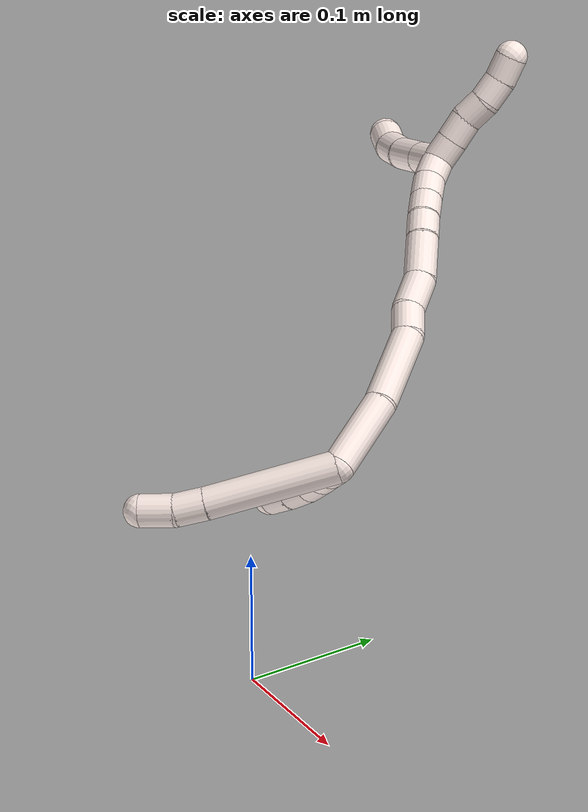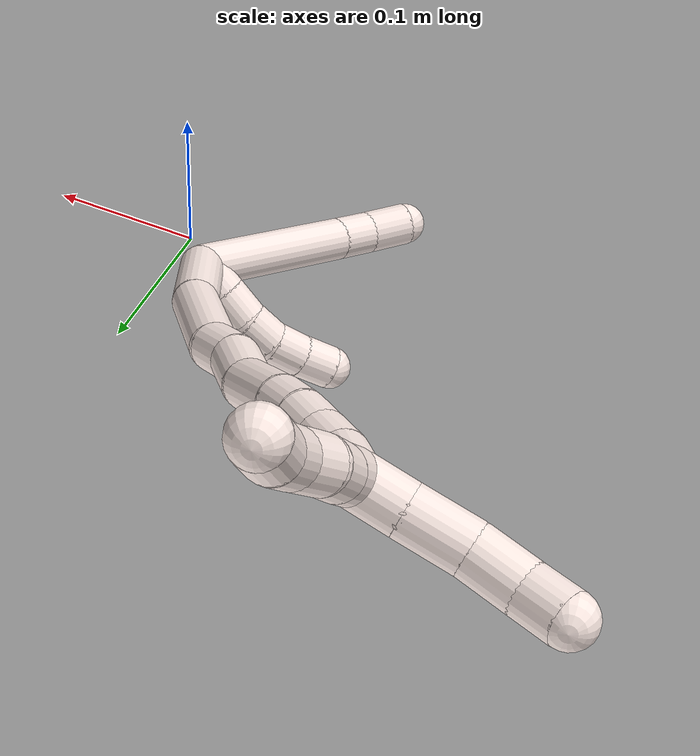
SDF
<sdf version="1.7">
 <world name="default">
  <model name="photoneo_s_sensor">
   <static>1</static>
   <pose>0 0 2 1.57079 1.57079 3.14159</pose>
   <link name="link">
    <inertial><mass>0.1</mass></inertial>
    <sensor name="sensor" type="depth">
     <update_rate>30</update_rate>
     <camera>
      <horizontal_fov>1.22</horizontal_fov>
      <image><width>1920</width><height>1200</height><format>B8G8R8</format></image>
      <clip><near>0.1</near><far>4</far></clip>
      <depth_camera><output>points</output></depth_camera>
     </camera>
     <plugin name="camera_plugin" filename="libgazebo_ros_depth_camera.so">
      <baseline>0.2</baseline>
      <alwaysOn>1</alwaysOn>
      <updateRate>0.0</updateRate>
      <cameraName>camera_ir</cameraName>
      <imageTopicName>/camera/color/image_raw</imageTopicName>
      <cameraInfoTopicName>/camera/color/camera_info</cameraInfoTopicName>
      <depthImageTopicName>/camera/depth/image_raw</depthImageTopicName>
      <depthImageCameraInfoTopicName>/camera/depth/camera_info</depthImageCameraInfoTopicName>
      <pointCloudTopicName>/camera/depth/points</pointCloudTopicName>
      <frameName>fr_optical</frameName>
      <pointCloudCutoff>0.1</pointCloudCutoff>
      <pointCloudCutoffMax>2.0</pointCloudCutoffMax>
      <distortionK1>0</distortionK1>
      <distortionK2>0</distortionK2>
      <distortionK3>0</distortionK3>
      <distortionT1>0</distortionT1>
      <distortionT2>0</distortionT2>
      <CxPrime>0</CxPrime>
      <Cx>0</Cx>
      <Cy>0</Cy>
      <focalLength>0</focalLength>
      <hackBaseline>0</hackBaseline>
     </plugin>
    </sensor>
   </link>
  </model>
  <model name="11">
   <static>0</static>
   <link name="11">
    <collision name="collision-cylinder-e_1_2_8">
     <pose>-0.018808 0.026844 -0.038106 -2.52787 -0.383519 1.09941</pose>
     <geometry><cylinder><radius>0.0125</radius><length>0.100527</length></cylinder></geometry>
     <surface>
      <friction><ode><mu>1.16</mu><mu2>1.16</mu2><slip1>0</slip1><slip2>0</slip2></ode></friction>
      <contact><ode><kp>1e+06</kp><kd>1</kd><max_vel>0</max_vel><min_depth>0.001</min_depth></ode></contact>
     </surface>
    </collision>
    <visual name="visual-cylinder-e_1_2_8">
     <pose>-0.018808 0.026844 -0.038106 -2.52787 -0.383519 1.09941</pose>
     <geometry><cylinder><radius>0.0125</radius><length>0.100527</length></cylinder></geometry>
     <material><ambient>1 0.933333 0.909804 1</ambient></material>
    </visual>
    <collision name="collision-cylinder-e_2_8_9">
     <pose>-0.042424 0.060071 -0.084709 -2.49738 -0.424908 1.14762</pose>
     <geometry><cylinder><radius>0.0125</radius><length>0.023329</length></cylinder></geometry>
     <surface>
      <friction><ode><mu>1.16</mu><mu2>1.16</mu2><slip1>0</slip1><slip2>0</slip2></ode></friction>
      <contact><ode><kp>1e+06</kp><kd>1</kd><max_vel>0</max_vel><min_depth>0.001</min_depth></ode></contact>
     </surface>
    </collision>
    <visual name="visual-cylinder-e_2_8_9">
     <pose>-0.042424 0.060071 -0.084709 -2.49738 -0.424908 1.14762</pose>
     <geometry><cylinder><radius>0.0125</radius><length>0.023329</length></cylinder></geometry>
     <material><ambient>1 0.933333 0.909804 1</ambient></material>
    </visual>
    <collision name="collision-cylinder-e_3_9_6">
     <pose>-0.054486 0.074317 -0.100718 -2.33333 -0.5882 1.23244</pose>
     <geometry><cylinder><radius>0.0125</radius><length>0.026144</length></cylinder></geometry>
     <surface>
      <friction><ode><mu>1.16</mu><mu2>1.16</mu2><slip1>0</slip1><slip2>0</slip2></ode></friction>
      <contact><ode><kp>1e+06</kp><kd>1</kd><max_vel>0</max_vel><min_depth>0.001</min_depth></ode></contact>
     </surface>
    </collision>
    <visual name="visual-cylinder-e_3_9_6">
     <pose>-0.054486 0.074317 -0.100718 -2.33333 -0.5882 1.23244</pose>
     <geometry><cylinder><radius>0.0125</radius><length>0.026144</length></cylinder></geometry>
     <material><ambient>1 0.933333 0.909804 1</ambient></material>
    </visual>
    <collision name="collision-cylinder-e_1_2_10">
     <pose>0.002593 0.009653 -0.000295 -1.60135 0.262345 -0.270387</pose>
     <geometry><cylinder><radius>0.0125</radius><length>0.02</length></cylinder></geometry>
     <surface>
      <friction><ode><mu>1.16</mu><mu2>1.16</mu2><slip1>0</slip1><slip2>0</slip2></ode></friction>
      <contact><ode><kp>1e+06</kp><kd>1</kd><max_vel>0</max_vel><min_depth>0.001</min_depth></ode></contact>
     </surface>
    </collision>
    <visual name="visual-cylinder-e_1_2_10">
     <pose>0.002593 0.009653 -0.000295 -1.60135 0.262345 -0.270387</pose>
     <geometry><cylinder><radius>0.0125</radius><length>0.02</length></cylinder></geometry>
     <material><ambient>1 0.933333 0.909804 1</ambient></material>
    </visual>
    <collision name="collision-cylinder-e_2_10_11">
     <pose>0.007907 0.028922 -0.00098 -1.61131 0.275507 -0.286748</pose>
     <geometry><cylinder><radius>0.0125</radius><length>0.02</length></cylinder></geometry>
     <surface>
      <friction><ode><mu>1.16</mu><mu2>1.16</mu2><slip1>0</slip1><slip2>0</slip2></ode></friction>
      <contact><ode><kp>1e+06</kp><kd>1</kd><max_vel>0</max_vel><min_depth>0.001</min_depth></ode></contact>
     </surface>
    </collision>
    <visual name="visual-cylinder-e_2_10_11">
     <pose>0.007907 0.028922 -0.00098 -1.61131 0.275507 -0.286748</pose>
     <geometry><cylinder><radius>0.0125</radius><length>0.02</length></cylinder></geometry>
     <material><ambient>1 0.933333 0.909804 1</ambient></material>
    </visual>
    <collision name="collision-cylinder-e_3_11_12">
     <pose>0.012458 0.048064 -0.003793 -1.81985 0.184049 -0.236284</pose>
     <geometry><cylinder><radius>0.0125</radius><length>0.02</length></cylinder></geometry>
     <surface>
      <friction><ode><mu>1.16</mu><mu2>1.16</mu2><slip1>0</slip1><slip2>0</slip2></ode></friction>
      <contact><ode><kp>1e+06</kp><kd>1</kd><max_vel>0</max_vel><min_depth>0.001</min_depth></ode></contact>
     </surface>
    </collision>
    <visual name="visual-cylinder-e_3_11_12">
     <pose>0.012458 0.048064 -0.003793 -1.81985 0.184049 -0.236284</pose>
     <geometry><cylinder><radius>0.0125</radius><length>0.02</length></cylinder></geometry>
     <material><ambient>1 0.933333 0.909804 1</ambient></material>
    </visual>
    <collision name="collision-cylinder-e_4_12_13">
     <pose>0.014026 0.066736 -0.010255 -1.98674 -0.026193 0.040201</pose>
     <geometry><cylinder><radius>0.0125</radius><length>0.02</length></cylinder></geometry>
     <surface>
      <friction><ode><mu>1.16</mu><mu2>1.16</mu2><slip1>0</slip1><slip2>0</slip2></ode></friction>
      <contact><ode><kp>1e+06</kp><kd>1</kd><max_vel>0</max_vel><min_depth>0.001</min_depth></ode></contact>
     </surface>
    </collision>
    <visual name="visual-cylinder-e_4_12_13">
     <pose>0.014026 0.066736 -0.010255 -1.98674 -0.026193 0.040201</pose>
     <geometry><cylinder><radius>0.0125</radius><length>0.02</length></cylinder></geometry>
     <material><ambient>1 0.933333 0.909804 1</ambient></material>
    </visual>
    <collision name="collision-cylinder-e_5_13_5">
     <pose>0.012687 0.085032 -0.01818 -1.97229 -0.107952 0.162907</pose>
     <geometry><cylinder><radius>0.0125</radius><length>0.02</length></cylinder></geometry>
     <surface>
      <friction><ode><mu>1.16</mu><mu2>1.16</mu2><slip1>0</slip1><slip2>0</slip2></ode></friction>
      <contact><ode><kp>1e+06</kp><kd>1</kd><max_vel>0</max_vel><min_depth>0.001</min_depth></ode></contact>
     </surface>
    </collision>
    <visual name="visual-cylinder-e_5_13_5">
     <pose>0.012687 0.085032 -0.01818 -1.97229 -0.107952 0.162907</pose>
     <geometry><cylinder><radius>0.0125</radius><length>0.02</length></cylinder></geometry>
     <material><ambient>1 0.933333 0.909804 1</ambient></material>
    </visual>
    <collision name="collision-cylinder-e_1_2_14">
     <pose>-0.002325 0.005153 0.03059 -0.166891 -0.074799 0.006259</pose>
     <geometry><cylinder><radius>0.0125</radius><length>0.062216</length></cylinder></geometry>
     <surface>
      <friction><ode><mu>1.16</mu><mu2>1.16</mu2><slip1>0</slip1><slip2>0</slip2></ode></friction>
      <contact><ode><kp>1e+06</kp><kd>1</kd><max_vel>0</max_vel><min_depth>0.001</min_depth></ode></contact>
     </surface>
    </collision>
    <visual name="visual-cylinder-e_1_2_14">
     <pose>-0.002325 0.005153 0.03059 -0.166891 -0.074799 0.006259</pose>
     <geometry><cylinder><radius>0.0125</radius><length>0.062216</length></cylinder></geometry>
     <material><ambient>1 0.933333 0.909804 1</ambient></material>
    </visual>
    <collision name="collision-cylinder-e_2_14_15">
     <pose>-0.010157 0.021239 0.091535 -0.34571 -0.169072 0.029588</pose>
     <geometry><cylinder><radius>0.0125</radius><length>0.065461</length></cylinder></geometry>
     <surface>
      <friction><ode><mu>1.16</mu><mu2>1.16</mu2><slip1>0</slip1><slip2>0</slip2></ode></friction>
      <contact><ode><kp>1e+06</kp><kd>1</kd><max_vel>0</max_vel><min_depth>0.001</min_depth></ode></contact>
     </surface>
    </collision>
    <visual name="visual-cylinder-e_2_14_15">
     <pose>-0.010157 0.021239 0.091535 -0.34571 -0.169072 0.029588</pose>
     <geometry><cylinder><radius>0.0125</radius><length>0.065461</length></cylinder></geometry>
     <material><ambient>1 0.933333 0.909804 1</ambient></material>
    </visual>
    <collision name="collision-cylinder-e_3_15_16">
     <pose>-0.020316 0.038059 0.131257 -0.561055 -0.398012 0.116085</pose>
     <geometry><cylinder><radius>0.0125</radius><length>0.024002</length></cylinder></geometry>
     <surface>
      <friction><ode><mu>1.16</mu><mu2>1.16</mu2><slip1>0</slip1><slip2>0</slip2></ode></friction>
      <contact><ode><kp>1e+06</kp><kd>1</kd><max_vel>0</max_vel><min_depth>0.001</min_depth></ode></contact>
     </surface>
    </collision>
    <visual name="visual-cylinder-e_3_15_16">
     <pose>-0.020316 0.038059 0.131257 -0.561055 -0.398012 0.116085</pose>
     <geometry><cylinder><radius>0.0125</radius><length>0.024002</length></cylinder></geometry>
     <material><ambient>1 0.933333 0.909804 1</ambient></material>
    </visual>
    <collision name="collision-cylinder-e_4_16_17">
     <pose>-0.02758 0.049463 0.154687 -0.373867 -0.171228 0.032463</pose>
     <geometry><cylinder><radius>0.0125</radius><length>0.030662</length></cylinder></geometry>
     <surface>
      <friction><ode><mu>1.16</mu><mu2>1.16</mu2><slip1>0</slip1><slip2>0</slip2></ode></friction>
      <contact><ode><kp>1e+06</kp><kd>1</kd><max_vel>0</max_vel><min_depth>0.001</min_depth></ode></contact>
     </surface>
    </collision>
    <visual name="visual-cylinder-e_4_16_17">
     <pose>-0.02758 0.049463 0.154687 -0.373867 -0.171228 0.032463</pose>
     <geometry><cylinder><radius>0.0125</radius><length>0.030662</length></cylinder></geometry>
     <material><ambient>1 0.933333 0.909804 1</ambient></material>
    </visual>
    <collision name="collision-cylinder-e_5_17_18">
     <pose>-0.037953 0.062445 0.183902 -0.457785 -0.430724 0.101841</pose>
     <geometry><cylinder><radius>0.0125</radius><length>0.037175</length></cylinder></geometry>
     <surface>
      <friction><ode><mu>1.16</mu><mu2>1.16</mu2><slip1>0</slip1><slip2>0</slip2></ode></friction>
      <contact><ode><kp>1e+06</kp><kd>1</kd><max_vel>0</max_vel><min_depth>0.001</min_depth></ode></contact>
     </surface>
    </collision>
    <visual name="visual-cylinder-e_5_17_18">
     <pose>-0.037953 0.062445 0.183902 -0.457785 -0.430724 0.101841</pose>
     <geometry><cylinder><radius>0.0125</radius><length>0.037175</length></cylinder></geometry>
     <material><ambient>1 0.933333 0.909804 1</ambient></material>
    </visual>
    <collision name="collision-cylinder-e_6_18_19">
     <pose>-0.049279 0.074803 0.207235 -0.538954 -0.357848 0.099821</pose>
     <geometry><cylinder><radius>0.0125</radius><length>0.020358</length></cylinder></geometry>
     <surface>
      <friction><ode><mu>1.16</mu><mu2>1.16</mu2><slip1>0</slip1><slip2>0</slip2></ode></friction>
      <contact><ode><kp>1e+06</kp><kd>1</kd><max_vel>0</max_vel><min_depth>0.001</min_depth></ode></contact>
     </surface>
    </collision>
    <visual name="visual-cylinder-e_6_18_19">
     <pose>-0.049279 0.074803 0.207235 -0.538954 -0.357848 0.099821</pose>
     <geometry><cylinder><radius>0.0125</radius><length>0.020358</length></cylinder></geometry>
     <material><ambient>1 0.933333 0.909804 1</ambient></material>
    </visual>
    <collision name="collision-cylinder-e_7_19_20">
     <pose>-0.055278 0.085035 0.22358 -0.579271 -0.244534 0.073208</pose>
     <geometry><cylinder><radius>0.0125</radius><length>0.020106</length></cylinder></geometry>
     <surface>
      <friction><ode><mu>1.16</mu><mu2>1.16</mu2><slip1>0</slip1><slip2>0</slip2></ode></friction>
      <contact><ode><kp>1e+06</kp><kd>1</kd><max_vel>0</max_vel><min_depth>0.001</min_depth></ode></contact>
     </surface>
    </collision>
    <visual name="visual-cylinder-e_7_19_20">
     <pose>-0.055278 0.085035 0.22358 -0.579271 -0.244534 0.073208</pose>
     <geometry><cylinder><radius>0.0125</radius><length>0.020106</length></cylinder></geometry>
     <material><ambient>1 0.933333 0.909804 1</ambient></material>
    </visual>
    <collision name="collision-cylinder-e_8_20_21">
     <pose>-0.060273 0.095243 0.240097 -0.527649 -0.258925 0.070305</pose>
     <geometry><cylinder><radius>0.0125</radius><length>0.020006</length></cylinder></geometry>
     <surface>
      <friction><ode><mu>1.16</mu><mu2>1.16</mu2><slip1>0</slip1><slip2>0</slip2></ode></friction>
      <contact><ode><kp>1e+06</kp><kd>1</kd><max_vel>0</max_vel><min_depth>0.001</min_depth></ode></contact>
     </surface>
    </collision>
    <visual name="visual-cylinder-e_8_20_21">
     <pose>-0.060273 0.095243 0.240097 -0.527649 -0.258925 0.070305</pose>
     <geometry><cylinder><radius>0.0125</radius><length>0.020006</length></cylinder></geometry>
     <material><ambient>1 0.933333 0.909804 1</ambient></material>
    </visual>
    <collision name="collision-cylinder-e_9_21_1">
     <pose>-0.064717 0.103066 0.257825 -0.305247 -0.189294 0.029202</pose>
     <geometry><cylinder><radius>0.0125</radius><length>0.020013</length></cylinder></geometry>
     <surface>
      <friction><ode><mu>1.16</mu><mu2>1.16</mu2><slip1>0</slip1><slip2>0</slip2></ode></friction>
      <contact><ode><kp>1e+06</kp><kd>1</kd><max_vel>0</max_vel><min_depth>0.001</min_depth></ode></contact>
     </surface>
    </collision>
    <visual name="visual-cylinder-e_9_21_1">
     <pose>-0.064717 0.103066 0.257825 -0.305247 -0.189294 0.029202</pose>
     <geometry><cylinder><radius>0.0125</radius><length>0.020013</length></cylinder></geometry>
     <material><ambient>1 0.933333 0.909804 1</ambient></material>
    </visual>
    <collision name="collision-cylinder-e_1_1_22">
     <pose>-0.068362 0.118054 0.268712 -1.44575 -0.14424 0.127293</pose>
     <geometry><cylinder><radius>0.0125</radius><length>0.024514</length></cylinder></geometry>
     <surface>
      <friction><ode><mu>1.16</mu><mu2>1.16</mu2><slip1>0</slip1><slip2>0</slip2></ode></friction>
      <contact><ode><kp>1e+06</kp><kd>1</kd><max_vel>0</max_vel><min_depth>0.001</min_depth></ode></contact>
     </surface>
    </collision>
    <visual name="visual-cylinder-e_1_1_22">
     <pose>-0.068362 0.118054 0.268712 -1.44575 -0.14424 0.127293</pose>
     <geometry><cylinder><radius>0.0125</radius><length>0.024514</length></cylinder></geometry>
     <material><ambient>1 0.933333 0.909804 1</ambient></material>
    </visual>
    <collision name="collision-cylinder-e_2_22_23">
     <pose>-0.072442 0.144495 0.27195 -1.45158 -0.158431 0.140649</pose>
     <geometry><cylinder><radius>0.0125</radius><length>0.029386</length></cylinder></geometry>
     <surface>
      <friction><ode><mu>1.16</mu><mu2>1.16</mu2><slip1>0</slip1><slip2>0</slip2></ode></friction>
      <contact><ode><kp>1e+06</kp><kd>1</kd><max_vel>0</max_vel><min_depth>0.001</min_depth></ode></contact>
     </surface>
    </collision>
    <visual name="visual-cylinder-e_2_22_23">
     <pose>-0.072442 0.144495 0.27195 -1.45158 -0.158431 0.140649</pose>
     <geometry><cylinder><radius>0.0125</radius><length>0.029386</length></cylinder></geometry>
     <material><ambient>1 0.933333 0.909804 1</ambient></material>
    </visual>
    <collision name="collision-cylinder-e_3_23_24">
     <pose>-0.076436 0.171019 0.277277 -1.28188 -0.131825 0.098405</pose>
     <geometry><cylinder><radius>0.0125</radius><length>0.025504</length></cylinder></geometry>
     <surface>
      <friction><ode><mu>1.16</mu><mu2>1.16</mu2><slip1>0</slip1><slip2>0</slip2></ode></friction>
      <contact><ode><kp>1e+06</kp><kd>1</kd><max_vel>0</max_vel><min_depth>0.001</min_depth></ode></contact>
     </surface>
    </collision>
    <visual name="visual-cylinder-e_3_23_24">
     <pose>-0.076436 0.171019 0.277277 -1.28188 -0.131825 0.098405</pose>
     <geometry><cylinder><radius>0.0125</radius><length>0.025504</length></cylinder></geometry>
     <material><ambient>1 0.933333 0.909804 1</ambient></material>
    </visual>
    <collision name="collision-cylinder-e_4_24_4">
     <pose>-0.080726 0.191374 0.286479 -0.97373 -0.256645 0.136398</pose>
     <geometry><cylinder><radius>0.0125</radius><length>0.020596</length></cylinder></geometry>
     <surface>
      <friction><ode><mu>1.16</mu><mu2>1.16</mu2><slip1>0</slip1><slip2>0</slip2></ode></friction>
      <contact><ode><kp>1e+06</kp><kd>1</kd><max_vel>0</max_vel><min_depth>0.001</min_depth></ode></contact>
     </surface>
    </collision>
    <visual name="visual-cylinder-e_4_24_4">
     <pose>-0.080726 0.191374 0.286479 -0.97373 -0.256645 0.136398</pose>
     <geometry><cylinder><radius>0.0125</radius><length>0.020596</length></cylinder></geometry>
     <material><ambient>1 0.933333 0.909804 1</ambient></material>
    </visual>
    <collision name="collision-cylinder-e_1_1_25">
     <pose>-0.069304 0.101941 0.27592 0.437378 -0.273844 -0.061224</pose>
     <geometry><cylinder><radius>0.0125</radius><length>0.02</length></cylinder></geometry>
     <surface>
      <friction><ode><mu>1.16</mu><mu2>1.16</mu2><slip1>0</slip1><slip2>0</slip2></ode></friction>
      <contact><ode><kp>1e+06</kp><kd>1</kd><max_vel>0</max_vel><min_depth>0.001</min_depth></ode></contact>
     </surface>
    </collision>
    <visual name="visual-cylinder-e_1_1_25">
     <pose>-0.069304 0.101941 0.27592 0.437378 -0.273844 -0.061224</pose>
     <geometry><cylinder><radius>0.0125</radius><length>0.02</length></cylinder></geometry>
     <material><ambient>1 0.933333 0.909804 1</ambient></material>
    </visual>
    <collision name="collision-cylinder-e_2_25_26">
     <pose>-0.075076 0.09375 0.293224 0.446886 -0.311792 -0.0714</pose>
     <geometry><cylinder><radius>0.0125</radius><length>0.02</length></cylinder></geometry>
     <surface>
      <friction><ode><mu>1.16</mu><mu2>1.16</mu2><slip1>0</slip1><slip2>0</slip2></ode></friction>
      <contact><ode><kp>1e+06</kp><kd>1</kd><max_vel>0</max_vel><min_depth>0.001</min_depth></ode></contact>
     </surface>
    </collision>
    <visual name="visual-cylinder-e_2_25_26">
     <pose>-0.075076 0.09375 0.293224 0.446886 -0.311792 -0.0714</pose>
     <geometry><cylinder><radius>0.0125</radius><length>0.02</length></cylinder></geometry>
     <material><ambient>1 0.933333 0.909804 1</ambient></material>
    </visual>
    <collision name="collision-cylinder-e_3_26_27">
     <pose>-0.079288 0.083764 0.30982 0.632541 -0.114645 -0.037555</pose>
     <geometry><cylinder><radius>0.0125</radius><length>0.02</length></cylinder></geometry>
     <surface>
      <friction><ode><mu>1.16</mu><mu2>1.16</mu2><slip1>0</slip1><slip2>0</slip2></ode></friction>
      <contact><ode><kp>1e+06</kp><kd>1</kd><max_vel>0</max_vel><min_depth>0.001</min_depth></ode></contact>
     </surface>
    </collision>
    <visual name="visual-cylinder-e_3_26_27">
     <pose>-0.079288 0.083764 0.30982 0.632541 -0.114645 -0.037555</pose>
     <geometry><cylinder><radius>0.0125</radius><length>0.02</length></cylinder></geometry>
     <material><ambient>1 0.933333 0.909804 1</ambient></material>
    </visual>
    <collision name="collision-cylinder-e_4_27_28">
     <pose>-0.083053 0.073865 0.326603 0.430262 -0.265217 -0.058279</pose>
     <geometry><cylinder><radius>0.0125</radius><length>0.02</length></cylinder></geometry>
     <surface>
      <friction><ode><mu>1.16</mu><mu2>1.16</mu2><slip1>0</slip1><slip2>0</slip2></ode></friction>
      <contact><ode><kp>1e+06</kp><kd>1</kd><max_vel>0</max_vel><min_depth>0.001</min_depth></ode></contact>
     </surface>
    </collision>
    <visual name="visual-cylinder-e_4_27_28">
     <pose>-0.083053 0.073865 0.326603 0.430262 -0.265217 -0.058279</pose>
     <geometry><cylinder><radius>0.0125</radius><length>0.02</length></cylinder></geometry>
     <material><ambient>1 0.933333 0.909804 1</ambient></material>
    </visual>
    <collision name="collision-cylinder-e_5_28_3">
     <pose>-0.090099 0.065818 0.343389 0.465083 -0.458365 -0.110382</pose>
     <geometry><cylinder><radius>0.0125</radius><length>0.02</length></cylinder></geometry>
     <surface>
      <friction><ode><mu>1.16</mu><mu2>1.16</mu2><slip1>0</slip1><slip2>0</slip2></ode></friction>
      <contact><ode><kp>1e+06</kp><kd>1</kd><max_vel>0</max_vel><min_depth>0.001</min_depth></ode></contact>
     </surface>
    </collision>
    <visual name="visual-cylinder-e_5_28_3">
     <pose>-0.090099 0.065818 0.343389 0.465083 -0.458365 -0.110382</pose>
     <geometry><cylinder><radius>0.0125</radius><length>0.02</length></cylinder></geometry>
     <material><ambient>1 0.933333 0.909804 1</ambient></material>
    </visual>
    <collision name="collision-sphere-3">
     <pose>-0.094524 0.061796 0.351404 0 -0 0</pose>
     <geometry><sphere><radius>0.0125</radius></sphere></geometry>
     <surface>
      <friction><ode><mu>1.16</mu><mu2>1.16</mu2><slip1>0</slip1><slip2>0</slip2></ode></friction>
      <contact><ode><kp>1e+06</kp><kd>1</kd><max_vel>0</max_vel><min_depth>0.001</min_depth></ode></contact>
     </surface>
    </collision>
    <visual name="visual-sphere-3">
     <pose>-0.094524 0.061796 0.351404 0 -0 0</pose>
     <geometry><sphere><radius>0.0125</radius></sphere></geometry>
     <material><ambient>1 0.933333 0.909804 1</ambient></material>
    </visual>
    <collision name="collision-sphere-28">
     <pose>-0.085674 0.06984 0.335374 0 -0 0</pose>
     <geometry><sphere><radius>0.0125</radius></sphere></geometry>
     <surface>
      <friction><ode><mu>1.16</mu><mu2>1.16</mu2><slip1>0</slip1><slip2>0</slip2></ode></friction>
      <contact><ode><kp>1e+06</kp><kd>1</kd><max_vel>0</max_vel><min_depth>0.001</min_depth></ode></contact>
     </surface>
    </collision>
    <visual name="visual-sphere-28">
     <pose>-0.085674 0.06984 0.335374 0 -0 0</pose>
     <geometry><sphere><radius>0.0125</radius></sphere></geometry>
     <material><ambient>1 0.933333 0.909804 1</ambient></material>
    </visual>
    <collision name="collision-sphere-27">
     <pose>-0.080432 0.077891 0.317832 0 -0 0</pose>
     <geometry><sphere><radius>0.0125</radius></sphere></geometry>
     <surface>
      <friction><ode><mu>1.16</mu><mu2>1.16</mu2><slip1>0</slip1><slip2>0</slip2></ode></friction>
      <contact><ode><kp>1e+06</kp><kd>1</kd><max_vel>0</max_vel><min_depth>0.001</min_depth></ode></contact>
     </surface>
    </collision>
    <visual name="visual-sphere-27">
     <pose>-0.080432 0.077891 0.317832 0 -0 0</pose>
     <geometry><sphere><radius>0.0125</radius></sphere></geometry>
     <material><ambient>1 0.933333 0.909804 1</ambient></material>
    </visual>
    <collision name="collision-sphere-26">
     <pose>-0.078144 0.089637 0.301808 0 -0 0</pose>
     <geometry><sphere><radius>0.0125</radius></sphere></geometry>
     <surface>
      <friction><ode><mu>1.16</mu><mu2>1.16</mu2><slip1>0</slip1><slip2>0</slip2></ode></friction>
      <contact><ode><kp>1e+06</kp><kd>1</kd><max_vel>0</max_vel><min_depth>0.001</min_depth></ode></contact>
     </surface>
    </collision>
    <visual name="visual-sphere-26">
     <pose>-0.078144 0.089637 0.301808 0 -0 0</pose>
     <geometry><sphere><radius>0.0125</radius></sphere></geometry>
     <material><ambient>1 0.933333 0.909804 1</ambient></material>
    </visual>
    <collision name="collision-sphere-25">
     <pose>-0.072009 0.097863 0.284641 0 -0 0</pose>
     <geometry><sphere><radius>0.0125</radius></sphere></geometry>
     <surface>
      <friction><ode><mu>1.16</mu><mu2>1.16</mu2><slip1>0</slip1><slip2>0</slip2></ode></friction>
      <contact><ode><kp>1e+06</kp><kd>1</kd><max_vel>0</max_vel><min_depth>0.001</min_depth></ode></contact>
     </surface>
    </collision>
    <visual name="visual-sphere-25">
     <pose>-0.072009 0.097863 0.284641 0 -0 0</pose>
     <geometry><sphere><radius>0.0125</radius></sphere></geometry>
     <material><ambient>1 0.933333 0.909804 1</ambient></material>
    </visual>
    <collision name="collision-sphere-4">
     <pose>-0.08334 0.199611 0.292079 0 -0 0</pose>
     <geometry><sphere><radius>0.0125</radius></sphere></geometry>
     <surface>
      <friction><ode><mu>1.16</mu><mu2>1.16</mu2><slip1>0</slip1><slip2>0</slip2></ode></friction>
      <contact><ode><kp>1e+06</kp><kd>1</kd><max_vel>0</max_vel><min_depth>0.001</min_depth></ode></contact>
     </surface>
    </collision>
    <visual name="visual-sphere-4">
     <pose>-0.08334 0.199611 0.292079 0 -0 0</pose>
     <geometry><sphere><radius>0.0125</radius></sphere></geometry>
     <material><ambient>1 0.933333 0.909804 1</ambient></material>
    </visual>
    <collision name="collision-sphere-24">
     <pose>-0.078112 0.183136 0.280879 0 -0 0</pose>
     <geometry><sphere><radius>0.0125</radius></sphere></geometry>
     <surface>
      <friction><ode><mu>1.16</mu><mu2>1.16</mu2><slip1>0</slip1><slip2>0</slip2></ode></friction>
      <contact><ode><kp>1e+06</kp><kd>1</kd><max_vel>0</max_vel><min_depth>0.001</min_depth></ode></contact>
     </surface>
    </collision>
    <visual name="visual-sphere-24">
     <pose>-0.078112 0.183136 0.280879 0 -0 0</pose>
     <geometry><sphere><radius>0.0125</radius></sphere></geometry>
     <material><ambient>1 0.933333 0.909804 1</ambient></material>
    </visual>
    <collision name="collision-sphere-23">
     <pose>-0.07476 0.158901 0.273676 0 -0 0</pose>
     <geometry><sphere><radius>0.0125</radius></sphere></geometry>
     <surface>
      <friction><ode><mu>1.16</mu><mu2>1.16</mu2><slip1>0</slip1><slip2>0</slip2></ode></friction>
      <contact><ode><kp>1e+06</kp><kd>1</kd><max_vel>0</max_vel><min_depth>0.001</min_depth></ode></contact>
     </surface>
    </collision>
    <visual name="visual-sphere-23">
     <pose>-0.07476 0.158901 0.273676 0 -0 0</pose>
     <geometry><sphere><radius>0.0125</radius></sphere></geometry>
     <material><ambient>1 0.933333 0.909804 1</ambient></material>
    </visual>
    <collision name="collision-sphere-22">
     <pose>-0.070124 0.130089 0.270225 0 -0 0</pose>
     <geometry><sphere><radius>0.0125</radius></sphere></geometry>
     <surface>
      <friction><ode><mu>1.16</mu><mu2>1.16</mu2><slip1>0</slip1><slip2>0</slip2></ode></friction>
      <contact><ode><kp>1e+06</kp><kd>1</kd><max_vel>0</max_vel><min_depth>0.001</min_depth></ode></contact>
     </surface>
    </collision>
    <visual name="visual-sphere-22">
     <pose>-0.070124 0.130089 0.270225 0 -0 0</pose>
     <geometry><sphere><radius>0.0125</radius></sphere></geometry>
     <material><ambient>1 0.933333 0.909804 1</ambient></material>
    </visual>
    <collision name="collision-sphere-1">
     <pose>-0.0666 0.106019 0.267199 0 -0 0</pose>
     <geometry><sphere><radius>0.0125</radius></sphere></geometry>
     <surface>
      <friction><ode><mu>1.16</mu><mu2>1.16</mu2><slip1>0</slip1><slip2>0</slip2></ode></friction>
      <contact><ode><kp>1e+06</kp><kd>1</kd><max_vel>0</max_vel><min_depth>0.001</min_depth></ode></contact>
     </surface>
    </collision>
    <visual name="visual-sphere-1">
     <pose>-0.0666 0.106019 0.267199 0 -0 0</pose>
     <geometry><sphere><radius>0.0125</radius></sphere></geometry>
     <material><ambient>1 0.933333 0.909804 1</ambient></material>
    </visual>
    <collision name="collision-sphere-21">
     <pose>-0.062834 0.100112 0.248452 0 -0 0</pose>
     <geometry><sphere><radius>0.0125</radius></sphere></geometry>
     <surface>
      <friction><ode><mu>1.16</mu><mu2>1.16</mu2><slip1>0</slip1><slip2>0</slip2></ode></friction>
      <contact><ode><kp>1e+06</kp><kd>1</kd><max_vel>0</max_vel><min_depth>0.001</min_depth></ode></contact>
     </surface>
    </collision>
    <visual name="visual-sphere-21">
     <pose>-0.062834 0.100112 0.248452 0 -0 0</pose>
     <geometry><sphere><radius>0.0125</radius></sphere></geometry>
     <material><ambient>1 0.933333 0.909804 1</ambient></material>
    </visual>
    <collision name="collision-sphere-11">
     <pose>0.010628 0.038537 -0.001369 0 -0 0</pose>
     <geometry><sphere><radius>0.0125</radius></sphere></geometry>
     <surface>
      <friction><ode><mu>1.16</mu><mu2>1.16</mu2><slip1>0</slip1><slip2>0</slip2></ode></friction>
      <contact><ode><kp>1e+06</kp><kd>1</kd><max_vel>0</max_vel><min_depth>0.001</min_depth></ode></contact>
     </surface>
    </collision>
    <visual name="visual-sphere-11">
     <pose>0.010628 0.038537 -0.001369 0 -0 0</pose>
     <geometry><sphere><radius>0.0125</radius></sphere></geometry>
     <material><ambient>1 0.933333 0.909804 1</ambient></material>
    </visual>
    <collision name="collision-sphere-10">
     <pose>0.005187 0.019307 -0.00059 0 -0 0</pose>
     <geometry><sphere><radius>0.0125</radius></sphere></geometry>
     <surface>
      <friction><ode><mu>1.16</mu><mu2>1.16</mu2><slip1>0</slip1><slip2>0</slip2></ode></friction>
      <contact><ode><kp>1e+06</kp><kd>1</kd><max_vel>0</max_vel><min_depth>0.001</min_depth></ode></contact>
     </surface>
    </collision>
    <visual name="visual-sphere-10">
     <pose>0.005187 0.019307 -0.00059 0 -0 0</pose>
     <geometry><sphere><radius>0.0125</radius></sphere></geometry>
     <material><ambient>1 0.933333 0.909804 1</ambient></material>
    </visual>
    <collision name="collision-sphere-6">
     <pose>-0.061739 0.082181 -0.10823 0 -0 0</pose>
     <geometry><sphere><radius>0.0125</radius></sphere></geometry>
     <surface>
      <friction><ode><mu>1.16</mu><mu2>1.16</mu2><slip1>0</slip1><slip2>0</slip2></ode></friction>
      <contact><ode><kp>1e+06</kp><kd>1</kd><max_vel>0</max_vel><min_depth>0.001</min_depth></ode></contact>
     </surface>
    </collision>
    <visual name="visual-sphere-6">
     <pose>-0.061739 0.082181 -0.10823 0 -0 0</pose>
     <geometry><sphere><radius>0.0125</radius></sphere></geometry>
     <material><ambient>1 0.933333 0.909804 1</ambient></material>
    </visual>
    <collision name="collision-sphere-9">
     <pose>-0.047233 0.066454 -0.093206 0 -0 0</pose>
     <geometry><sphere><radius>0.0125</radius></sphere></geometry>
     <surface>
      <friction><ode><mu>1.16</mu><mu2>1.16</mu2><slip1>0</slip1><slip2>0</slip2></ode></friction>
      <contact><ode><kp>1e+06</kp><kd>1</kd><max_vel>0</max_vel><min_depth>0.001</min_depth></ode></contact>
     </surface>
    </collision>
    <visual name="visual-sphere-9">
     <pose>-0.047233 0.066454 -0.093206 0 -0 0</pose>
     <geometry><sphere><radius>0.0125</radius></sphere></geometry>
     <material><ambient>1 0.933333 0.909804 1</ambient></material>
    </visual>
    <collision name="collision-sphere-2">
     <geometry><sphere><radius>0.0125</radius></sphere></geometry>
     <surface>
      <friction><ode><mu>1.16</mu><mu2>1.16</mu2><slip1>0</slip1><slip2>0</slip2></ode></friction>
      <contact><ode><kp>1e+06</kp><kd>1</kd><max_vel>0</max_vel><min_depth>0.001</min_depth></ode></contact>
     </surface>
    </collision>
    <visual name="visual-sphere-2">
     <geometry><sphere><radius>0.0125</radius></sphere></geometry>
     <material><ambient>1 0.933333 0.909804 1</ambient></material>
    </visual>
    <collision name="collision-sphere-19">
     <pose>-0.052844 0.079696 0.215418 0 -0 0</pose>
     <geometry><sphere><radius>0.0125</radius></sphere></geometry>
     <surface>
      <friction><ode><mu>1.16</mu><mu2>1.16</mu2><slip1>0</slip1><slip2>0</slip2></ode></friction>
      <contact><ode><kp>1e+06</kp><kd>1</kd><max_vel>0</max_vel><min_depth>0.001</min_depth></ode></contact>
     </surface>
    </collision>
    <visual name="visual-sphere-19">
     <pose>-0.052844 0.079696 0.215418 0 -0 0</pose>
     <geometry><sphere><radius>0.0125</radius></sphere></geometry>
     <material><ambient>1 0.933333 0.909804 1</ambient></material>
    </visual>
    <collision name="collision-sphere-8">
     <pose>-0.037616 0.053689 -0.076212 0 -0 0</pose>
     <geometry><sphere><radius>0.0125</radius></sphere></geometry>
     <surface>
      <friction><ode><mu>1.16</mu><mu2>1.16</mu2><slip1>0</slip1><slip2>0</slip2></ode></friction>
      <contact><ode><kp>1e+06</kp><kd>1</kd><max_vel>0</max_vel><min_depth>0.001</min_depth></ode></contact>
     </surface>
    </collision>
    <visual name="visual-sphere-8">
     <pose>-0.037616 0.053689 -0.076212 0 -0 0</pose>
     <geometry><sphere><radius>0.0125</radius></sphere></geometry>
     <material><ambient>1 0.933333 0.909804 1</ambient></material>
    </visual>
    <collision name="collision-sphere-12">
     <pose>0.014288 0.057592 -0.006216 0 -0 0</pose>
     <geometry><sphere><radius>0.0125</radius></sphere></geometry>
     <surface>
      <friction><ode><mu>1.16</mu><mu2>1.16</mu2><slip1>0</slip1><slip2>0</slip2></ode></friction>
      <contact><ode><kp>1e+06</kp><kd>1</kd><max_vel>0</max_vel><min_depth>0.001</min_depth></ode></contact>
     </surface>
    </collision>
    <visual name="visual-sphere-12">
     <pose>0.014288 0.057592 -0.006216 0 -0 0</pose>
     <geometry><sphere><radius>0.0125</radius></sphere></geometry>
     <material><ambient>1 0.933333 0.909804 1</ambient></material>
    </visual>
    <collision name="collision-sphere-13">
     <pose>0.013764 0.075881 -0.014294 0 -0 0</pose>
     <geometry><sphere><radius>0.0125</radius></sphere></geometry>
     <surface>
      <friction><ode><mu>1.16</mu><mu2>1.16</mu2><slip1>0</slip1><slip2>0</slip2></ode></friction>
      <contact><ode><kp>1e+06</kp><kd>1</kd><max_vel>0</max_vel><min_depth>0.001</min_depth></ode></contact>
     </surface>
    </collision>
    <visual name="visual-sphere-13">
     <pose>0.013764 0.075881 -0.014294 0 -0 0</pose>
     <geometry><sphere><radius>0.0125</radius></sphere></geometry>
     <material><ambient>1 0.933333 0.909804 1</ambient></material>
    </visual>
    <collision name="collision-sphere-5">
     <pose>0.011609 0.094183 -0.022065 0 -0 0</pose>
     <geometry><sphere><radius>0.0125</radius></sphere></geometry>
     <surface>
      <friction><ode><mu>1.16</mu><mu2>1.16</mu2><slip1>0</slip1><slip2>0</slip2></ode></friction>
      <contact><ode><kp>1e+06</kp><kd>1</kd><max_vel>0</max_vel><min_depth>0.001</min_depth></ode></contact>
     </surface>
    </collision>
    <visual name="visual-sphere-5">
     <pose>0.011609 0.094183 -0.022065 0 -0 0</pose>
     <geometry><sphere><radius>0.0125</radius></sphere></geometry>
     <material><ambient>1 0.933333 0.909804 1</ambient></material>
    </visual>
    <collision name="collision-sphere-14">
     <pose>-0.004649 0.010306 0.06118 0 -0 0</pose>
     <geometry><sphere><radius>0.0125</radius></sphere></geometry>
     <surface>
      <friction><ode><mu>1.16</mu><mu2>1.16</mu2><slip1>0</slip1><slip2>0</slip2></ode></friction>
      <contact><ode><kp>1e+06</kp><kd>1</kd><max_vel>0</max_vel><min_depth>0.001</min_depth></ode></contact>
     </surface>
    </collision>
    <visual name="visual-sphere-14">
     <pose>-0.004649 0.010306 0.06118 0 -0 0</pose>
     <geometry><sphere><radius>0.0125</radius></sphere></geometry>
     <material><ambient>1 0.933333 0.909804 1</ambient></material>
    </visual>
    <collision name="collision-sphere-15">
     <pose>-0.015664 0.032173 0.12189 0 -0 0</pose>
     <geometry><sphere><radius>0.0125</radius></sphere></geometry>
     <surface>
      <friction><ode><mu>1.16</mu><mu2>1.16</mu2><slip1>0</slip1><slip2>0</slip2></ode></friction>
      <contact><ode><kp>1e+06</kp><kd>1</kd><max_vel>0</max_vel><min_depth>0.001</min_depth></ode></contact>
     </surface>
    </collision>
    <visual name="visual-sphere-15">
     <pose>-0.015664 0.032173 0.12189 0 -0 0</pose>
     <geometry><sphere><radius>0.0125</radius></sphere></geometry>
     <material><ambient>1 0.933333 0.909804 1</ambient></material>
    </visual>
    <collision name="collision-sphere-16">
     <pose>-0.024967 0.043945 0.140624 0 -0 0</pose>
     <geometry><sphere><radius>0.0125</radius></sphere></geometry>
     <surface>
      <friction><ode><mu>1.16</mu><mu2>1.16</mu2><slip1>0</slip1><slip2>0</slip2></ode></friction>
      <contact><ode><kp>1e+06</kp><kd>1</kd><max_vel>0</max_vel><min_depth>0.001</min_depth></ode></contact>
     </surface>
    </collision>
    <visual name="visual-sphere-16">
     <pose>-0.024967 0.043945 0.140624 0 -0 0</pose>
     <geometry><sphere><radius>0.0125</radius></sphere></geometry>
     <material><ambient>1 0.933333 0.909804 1</ambient></material>
    </visual>
    <collision name="collision-sphere-17">
     <pose>-0.030192 0.05498 0.168751 0 -0 0</pose>
     <geometry><sphere><radius>0.0125</radius></sphere></geometry>
     <surface>
      <friction><ode><mu>1.16</mu><mu2>1.16</mu2><slip1>0</slip1><slip2>0</slip2></ode></friction>
      <contact><ode><kp>1e+06</kp><kd>1</kd><max_vel>0</max_vel><min_depth>0.001</min_depth></ode></contact>
     </surface>
    </collision>
    <visual name="visual-sphere-17">
     <pose>-0.030192 0.05498 0.168751 0 -0 0</pose>
     <geometry><sphere><radius>0.0125</radius></sphere></geometry>
     <material><ambient>1 0.933333 0.909804 1</ambient></material>
    </visual>
    <collision name="collision-sphere-18">
     <pose>-0.045714 0.069909 0.199052 0 -0 0</pose>
     <geometry><sphere><radius>0.0125</radius></sphere></geometry>
     <surface>
      <friction><ode><mu>1.16</mu><mu2>1.16</mu2><slip1>0</slip1><slip2>0</slip2></ode></friction>
      <contact><ode><kp>1e+06</kp><kd>1</kd><max_vel>0</max_vel><min_depth>0.001</min_depth></ode></contact>
     </surface>
    </collision>
    <visual name="visual-sphere-18">
     <pose>-0.045714 0.069909 0.199052 0 -0 0</pose>
     <geometry><sphere><radius>0.0125</radius></sphere></geometry>
     <material><ambient>1 0.933333 0.909804 1</ambient></material>
    </visual>
    <collision name="collision-sphere-20">
     <pose>-0.057712 0.090375 0.231743 0 -0 0</pose>
     <geometry><sphere><radius>0.0125</radius></sphere></geometry>
     <surface>
      <friction><ode><mu>1.16</mu><mu2>1.16</mu2><slip1>0</slip1><slip2>0</slip2></ode></friction>
      <contact><ode><kp>1e+06</kp><kd>1</kd><max_vel>0</max_vel><min_depth>0.001</min_depth></ode></contact>
     </surface>
    </collision>
    <visual name="visual-sphere-20">
     <pose>-0.057712 0.090375 0.231743 0 -0 0</pose>
     <geometry><sphere><radius>0.0125</radius></sphere></geometry>
     <material><ambient>1 0.933333 0.909804 1</ambient></material>
    </visual>
    <inertial>
     <pose>-0.035779 0.0644 0.120963 0 -0 0</pose>
     <mass>0.75</mass>
     <inertia>
      <ixx>0.000192</ixx>
      <ixy>0</ixy>
      <ixz>0</ixz>
      <iyy>0.000159</iyy>
      <iyz>0</iyz>
      <izz>-1.3e-05</izz>
     </inertia>
    </inertial>
   </link>
   <pose>-0.070836 0.11687 0.104497 -0.739282 0.897553 0.928143</pose>
  </model>
 </world>
</sdf>
